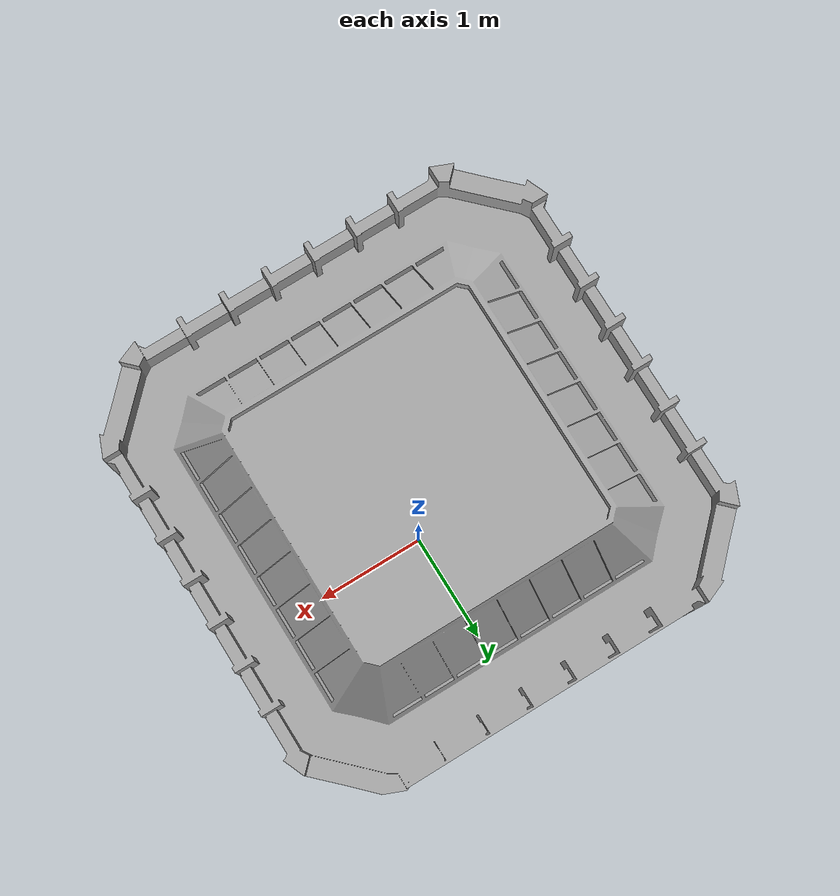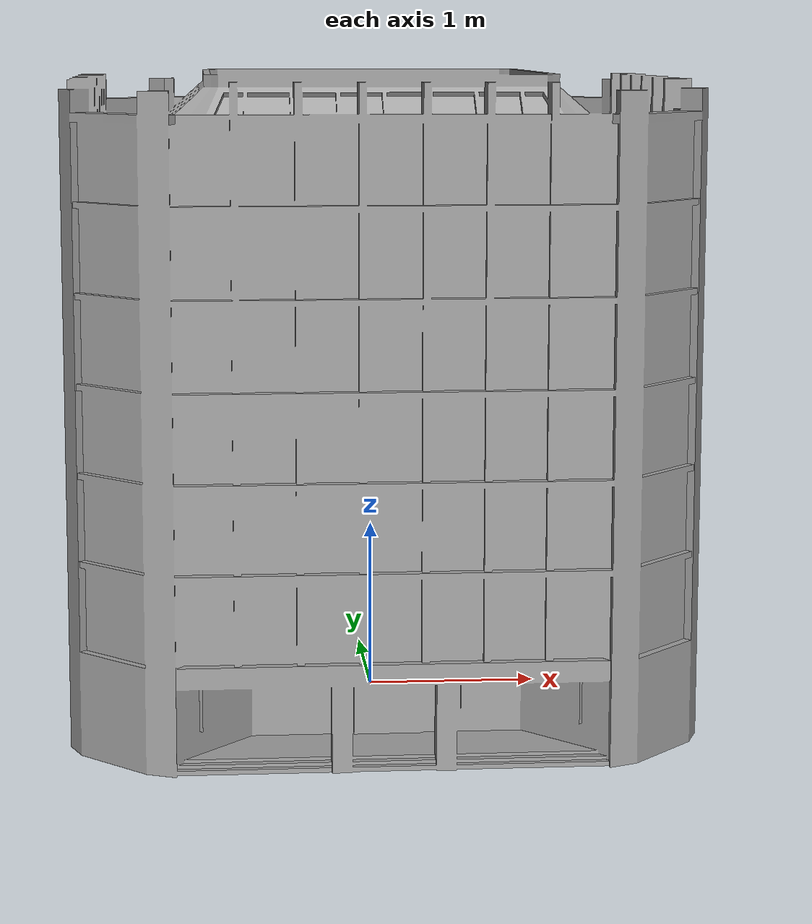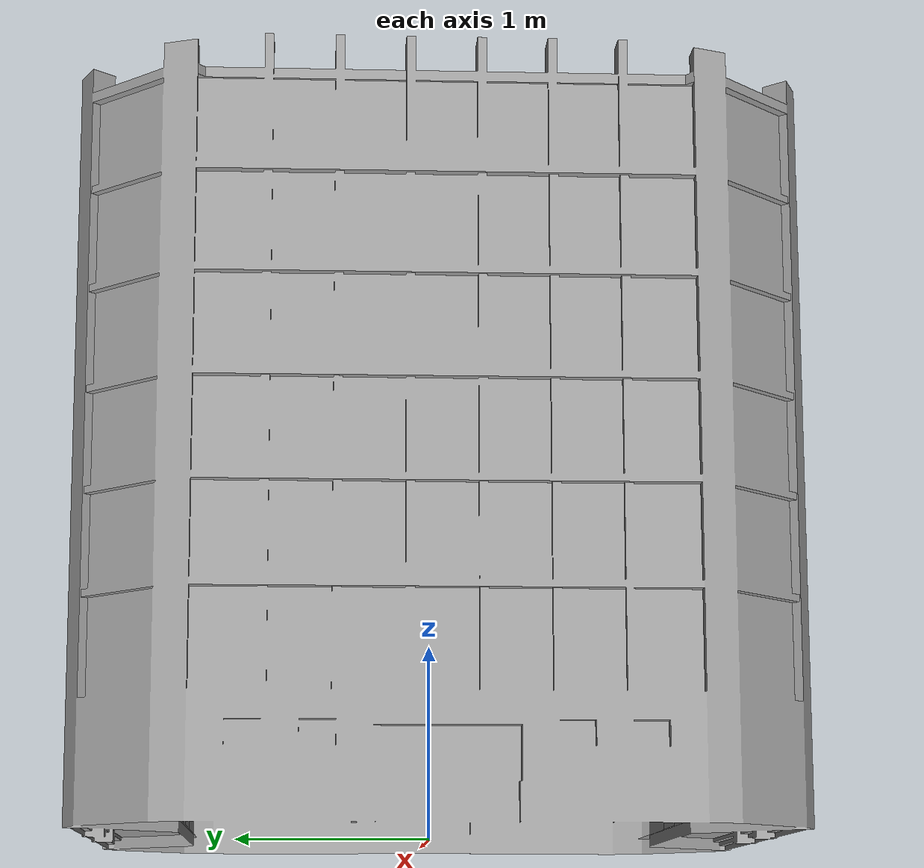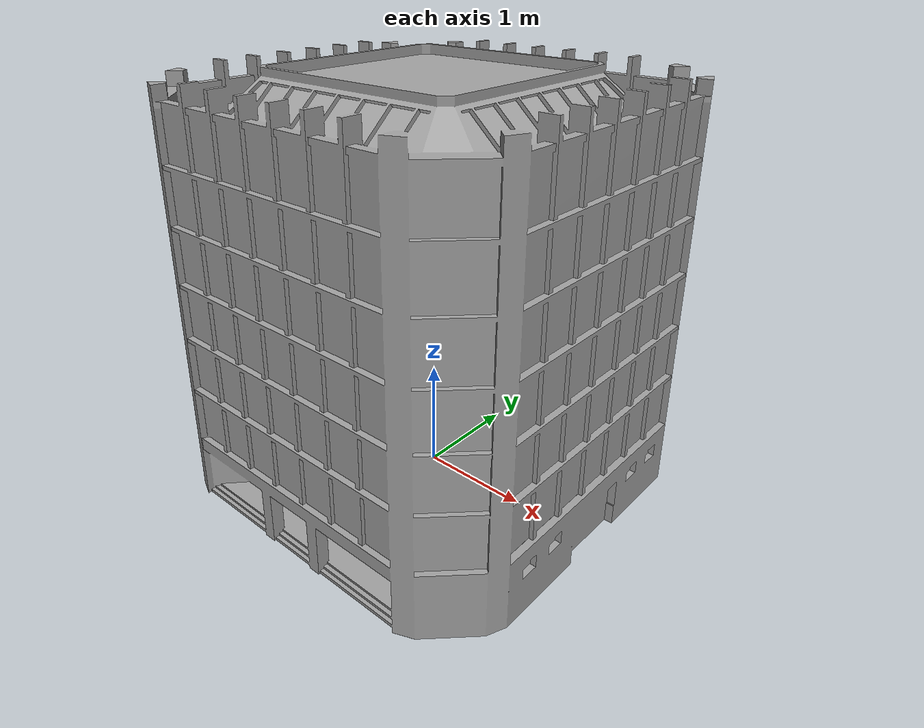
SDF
<?xml version="1.0" ?>
<sdf version="1.5">
  <model name="Office Building">
    <static>true</static>
    <link name="link">
      <collision name="collision">
        <geometry>
          <mesh>
            <uri>model://office_building/meshes/office_building.dae</uri>
      <scale>0.2 0.2 0.2</scale>
          </mesh>
        </geometry>
      </collision>
      <visual name="visual">
        <geometry>
          <mesh>
            <uri>model://office_building/meshes/office_building.dae</uri>
      <scale>0.2 0.2 0.2</scale>
          </mesh>
        </geometry>
      </visual>
    </link>
  </model>
</sdf>
